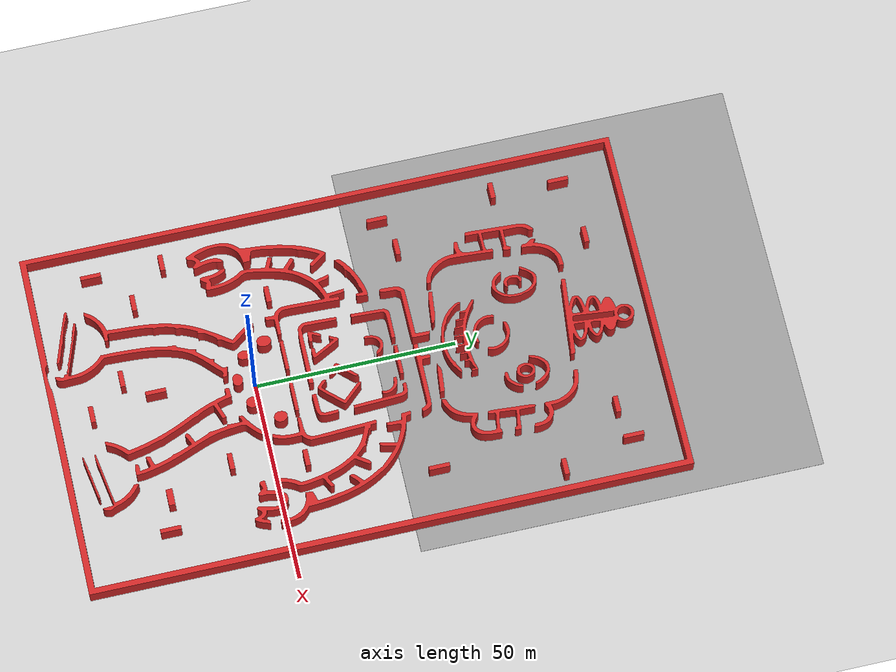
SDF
<sdf version="1.6">
 <world name="default">
  <light name="sun" type="directional">
   <pose>0 0 10 0 -0 0</pose>
   <diffuse>0.8 0.8 0.8 1</diffuse>
   <specular>0.2 0.2 0.2 1</specular>
   <attenuation>
    <range>1000</range>
    <constant>0.9</constant>
    <linear>0.01</linear>
    <quadratic>0.001</quadratic>
   </attenuation>
   <direction>-0.5 0.1 -0.9</direction>
  </light>
  <model name="ground_plane">
   <static>1</static>
   <link name="link">
    <collision name="collision">
     <geometry><plane><normal>0 0 1</normal><size>100 100</size></plane></geometry>
     <surface><friction><ode><mu>100</mu><mu2>50</mu2></ode></friction></surface>
    </collision>
    <visual name="visual">
     <cast_shadows>0</cast_shadows>
     <geometry><plane><normal>0 0 1</normal><size>100 100</size></plane></geometry>
     <material>
      <script><uri>file://media/materials/scripts/gazebo.material</uri><name>Gazebo/Grey</name></script>
     </material>
    </visual>
   </link>
  </model>
  <gravity>0 0 -9.8</gravity>
  <magnetic_field>6e-06 2.3e-05 -4.2e-05</magnetic_field>
  <atmosphere type="adiabatic"/>
  <physics name="default_physics" default="0" type="ode">
   <max_step_size>0.001</max_step_size>
   <real_time_factor>1</real_time_factor>
   <real_time_update_rate>1000</real_time_update_rate>
  </physics>
  <scene><ambient>0.4 0.4 0.4 1</ambient><background>0.7 0.7 0.7 1</background><shadows>1</shadows></scene>
  <spherical_coordinates>
   <surface_model>EARTH_WGS84</surface_model>
   <latitude_deg>0</latitude_deg>
   <longitude_deg>0</longitude_deg>
   <elevation>0</elevation>
   <heading_deg>0</heading_deg>
  </spherical_coordinates>
  <model name="rcap_robot">
   <static>1</static>
   <pose>-42.7357 98.818 0 0 -0 0</pose>
   <link name="link">
    <collision name="collision">
     <geometry><mesh><uri>model://rcap_robot/rcap_robot.stl</uri><scale>400 500 5</scale></mesh></geometry>
    </collision>
    <visual name="visual">
     <geometry><mesh><uri>model://rcap_robot/rcap_robot.stl</uri><scale>400 500 5</scale></mesh></geometry>
     <cast_shadows>0</cast_shadows>
     <material>
      <script><uri>file://media/materials/scripts/gazebo.material</uri><name>Gazebo/Red</name></script>
     </material>
    </visual>
   </link>
  </model>
  <model name="ground_plane_0">
   <static>1</static>
   <link name="link">
    <collision name="collision">
     <geometry><plane><normal>0 0 1</normal><size>100 100</size></plane></geometry>
     <surface><friction><ode><mu>100</mu><mu2>50</mu2></ode></friction></surface>
    </collision>
    <visual name="visual">
     <cast_shadows>0</cast_shadows>
     <geometry><plane><normal>0 0 1</normal><size>100 100</size></plane></geometry>
     <material>
      <script><uri>file://media/materials/scripts/gazebo.material</uri><name>Gazebo/Grey</name></script>
     </material>
    </visual>
   </link>
   <pose>0.072897 80.0224 0 0 -0 0</pose>
  </model>
 </world>
</sdf>
